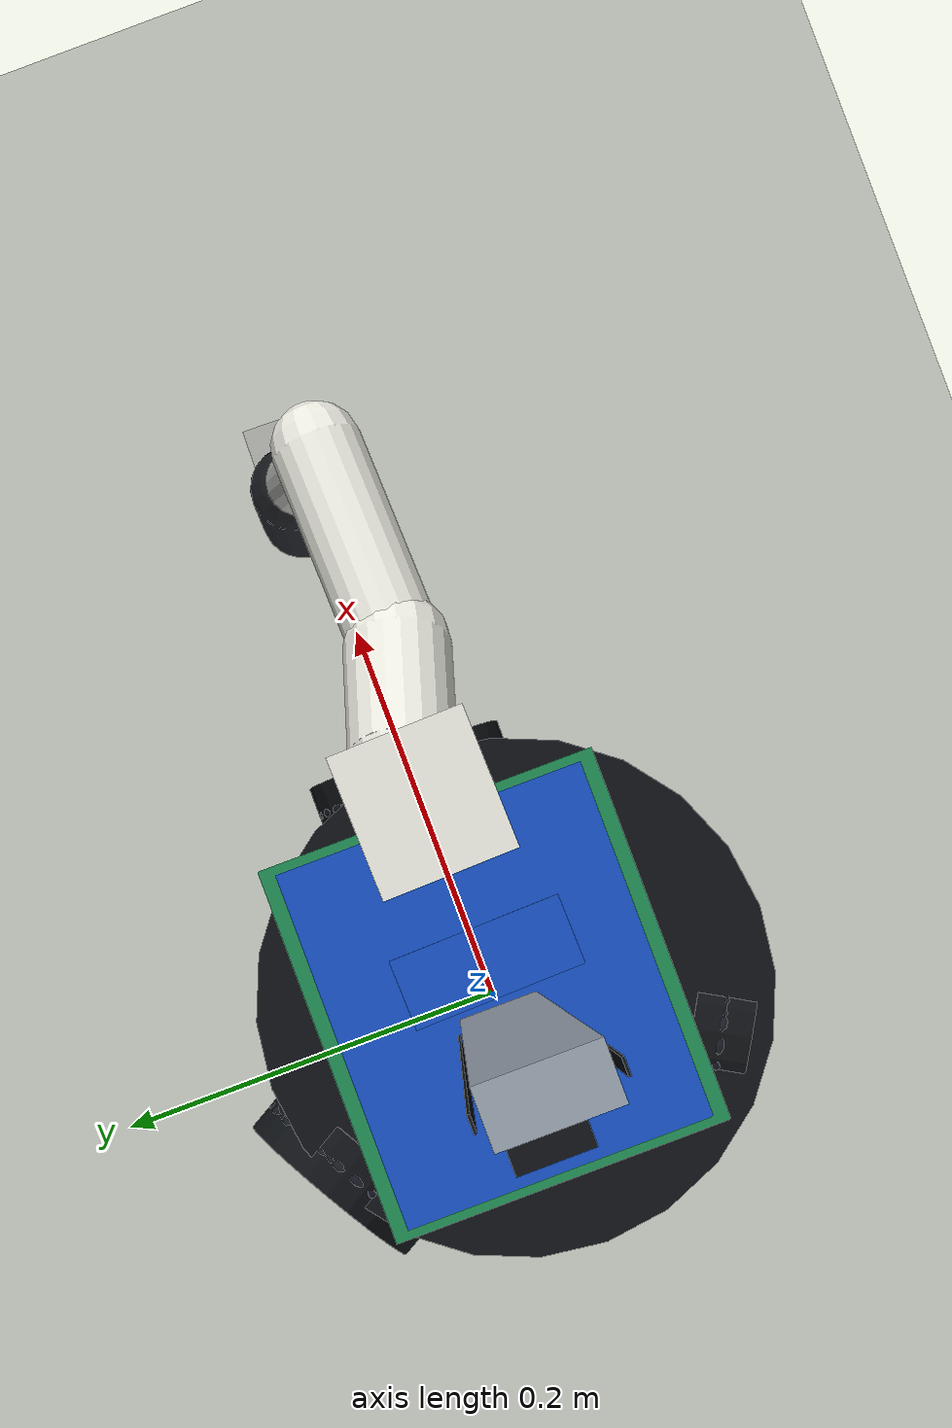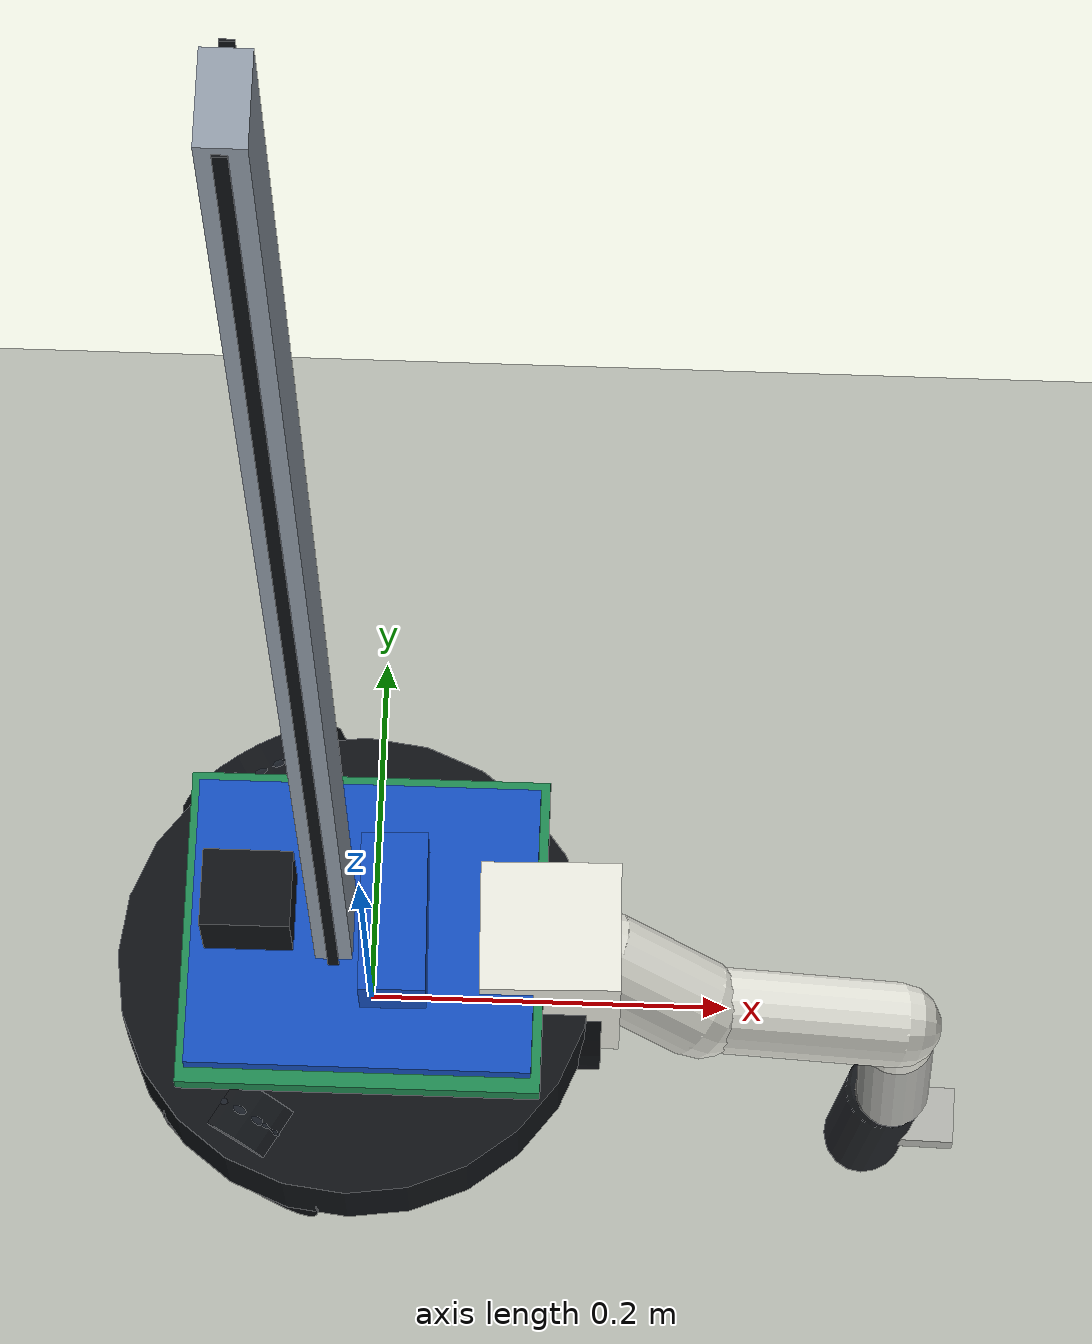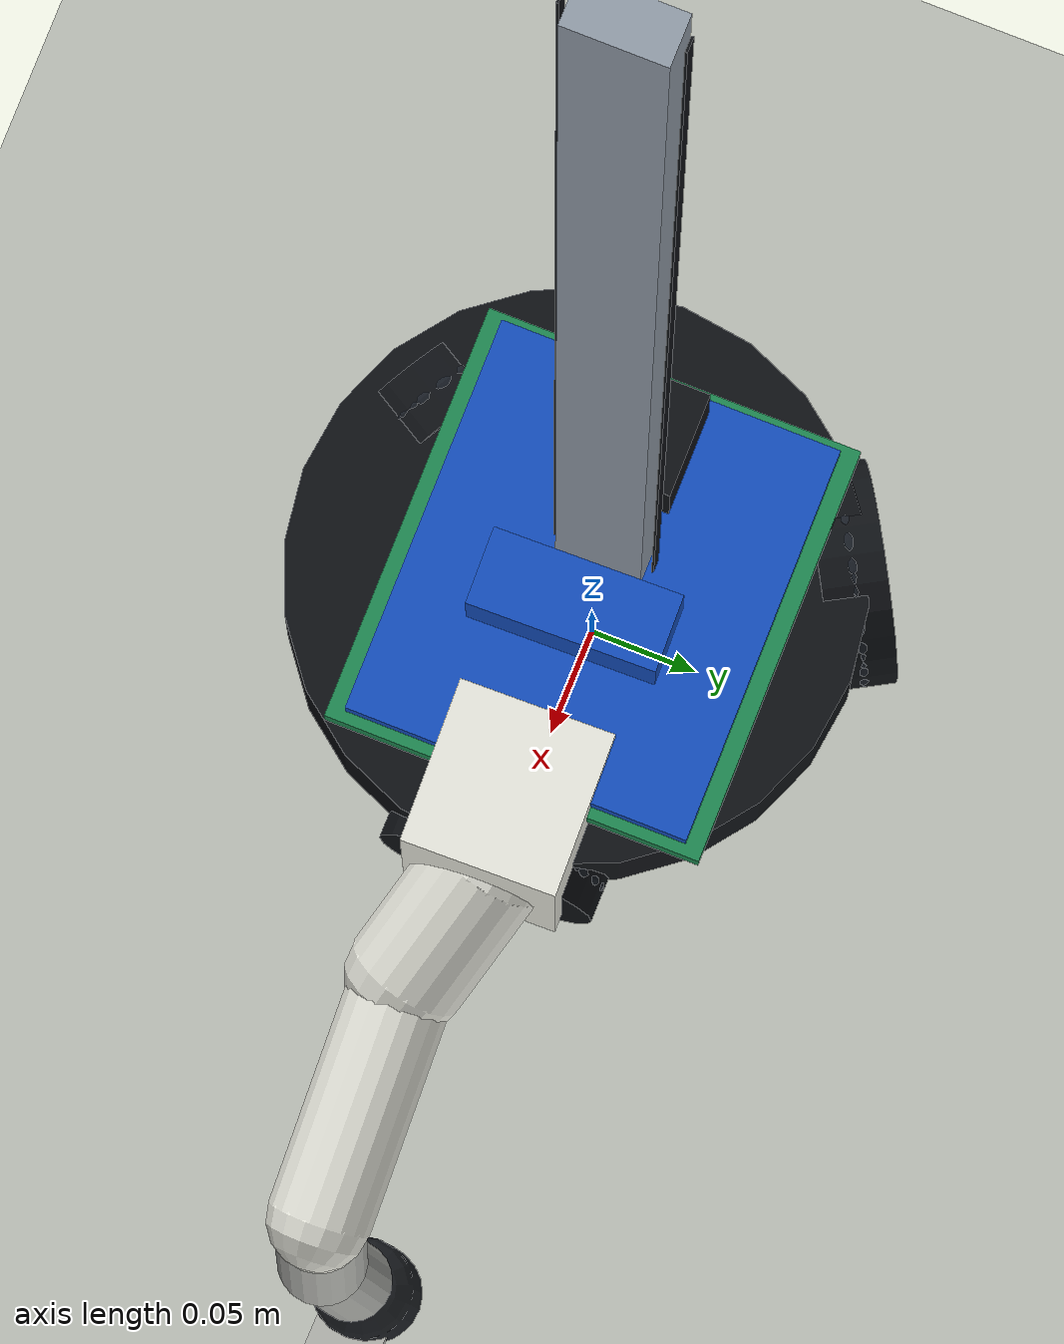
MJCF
<mujoco model="kural workshop">
  <compiler angle="radian" autolimits="true" />
  <option timestep="0.002" gravity="0 0 -9.81" integrator="implicitfast" cone="elliptic" iterations="50" />
  <size nconmax="300" njmax="1200" />
  <visual>
    <global azimuth="135" elevation="-22" />
    <headlight ambient="0.35 0.35 0.4" diffuse="0.7 0.7 0.7" specular="0.15 0.15 0.15" />
  </visual>
  <default>
    <joint damping="0.12" armature="0.003" />
    <geom friction="0.9 0.01 0.002" solref="0.008 1" solimp="0.9 0.95 0.001" />
    <default class="visual">
      <geom contype="0" conaffinity="0" group="1" />
    </default>
    <default class="collision">
      <geom rgba="0.15 0.65 0.9 0.16" group="3" margin="0.001" />
    </default>
    <default class="roller">
      <joint type="hinge" damping="0.0005" armature="0.00002" />
      <geom type="ellipsoid" size="0.005800 0.012000 0.005800" density="650" friction="1.15 0.001 0.0001" contype="2" conaffinity="1" rgba="0.09 0.11 0.14 1" group="2" condim="3" priority="1" />
    </default>
    <default class="arm">
      <joint type="hinge" damping="0.3" armature="0.01" limited="true" />
    </default>
  </default>
  <asset>
    <texture name="floor_tex" type="2d" builtin="checker" rgb1="0.18 0.19 0.2" rgb2="0.25 0.26 0.28" width="512" height="512" />
    <material name="floor_mat" texture="floor_tex" texrepeat="20 20" reflectance="0.08" />
    <material name="dark" rgba="0.055 0.065 0.08 1" />
    <material name="aluminum" rgba="0.58 0.62 0.67 1" specular="0.3" shininess="0.45" />
    <material name="blue" rgba="0.08 0.31 0.75 1" />
    <material name="green" rgba="0.12 0.54 0.32 1" />
    <material name="arm_mat" rgba="0.92 0.92 0.88 1" />
  </asset>
  <worldbody>
    <light name="key" pos="1.5 -1.2 2.6" dir="-0.4 0.3 -1" diffuse="0.9 0.88 0.82" castshadow="true" />
    <light name="fill" pos="-1.5 1 1.8" dir="0.6 -0.4 -1" diffuse="0.35 0.42 0.52" />
    <geom name="floor" type="plane" size="3 3 0.05" material="floor_mat" condim="4" />
    <site name="world_origin" type="sphere" size="0.012" rgba="1 0.35 0.1 1" group="4" />
    <body name="chassis" pos="0 0 0.0508" quat="1 0 0 0">
      <freejoint name="base_free" />
      <inertial pos="0 0 0.13" mass="11" diaginertia="0.18 0.18 0.12" />
      <geom name="base_collision" class="collision" type="cylinder" pos="-0.005 -0.01 0.015" size="0.135 0.035" mass="2.5" contype="2" conaffinity="1" />
      <geom name="base_frame_visual" class="visual" type="cylinder" pos="-0.005 -0.01 0.022" size="0.13 0.025" material="dark" />
      <geom name="green_plate_visual" class="visual" type="box" pos="0 0 0.066" size="0.098 0.088 0.006" material="green" />
      <geom name="blue_plate_visual" class="visual" type="box" pos="0 0 0.078" size="0.093 0.08 0.005" material="blue" />
      <site name="base_heading" type="box" pos="0.09 0 0.11" size="0.09 0.009 0.009" rgba="1 0.34 0.08 1" group="4" />
      <body name="wheel_1_body" pos="-0.057199460 0.099793390 0" quat="0.707106781 -0.613772432 -0.351117362 0.000000000">
        <joint name="wheel_1" type="hinge" axis="0 0 1" damping="0.025" armature="0.004" />
        <geom class="visual" type="cylinder" size="0.0508 0.015" material="dark" />
        <body name="wheel_1_roller_00" pos="0.045000000 0.000000000 0" euler="0 0 0.000000000">
          <joint class="roller" axis="0 1 0" />
          <geom class="roller" />
        </body>
        <body name="wheel_1_roller_01" pos="0.044135338 0.008779064 0" euler="0 0 0.196349541">
          <joint class="roller" axis="0 1 0" />
          <geom class="roller" />
        </body>
        <body name="wheel_1_roller_02" pos="0.041574579 0.017220754 0" euler="0 0 0.392699082">
          <joint class="roller" axis="0 1 0" />
          <geom class="roller" />
        </body>
        <body name="wheel_1_roller_03" pos="0.037416133 0.025000660 0" euler="0 0 0.589048623">
          <joint class="roller" axis="0 1 0" />
          <geom class="roller" />
        </body>
        <body name="wheel_1_roller_04" pos="0.031819805 0.031819805 0" euler="0 0 0.785398163">
          <joint class="roller" axis="0 1 0" />
          <geom class="roller" />
        </body>
        <body name="wheel_1_roller_05" pos="0.025000660 0.037416133 0" euler="0 0 0.981747704">
          <joint class="roller" axis="0 1 0" />
          <geom class="roller" />
        </body>
        <body name="wheel_1_roller_06" pos="0.017220754 0.041574579 0" euler="0 0 1.178097245">
          <joint class="roller" axis="0 1 0" />
          <geom class="roller" />
        </body>
        <body name="wheel_1_roller_07" pos="0.008779064 0.044135338 0" euler="0 0 1.374446786">
          <joint class="roller" axis="0 1 0" />
          <geom class="roller" />
        </body>
        <body name="wheel_1_roller_08" pos="0.000000000 0.045000000 0" euler="0 0 1.570796327">
          <joint class="roller" axis="0 1 0" />
          <geom class="roller" />
        </body>
        <body name="wheel_1_roller_09" pos="-0.008779064 0.044135338 0" euler="0 0 1.767145868">
          <joint class="roller" axis="0 1 0" />
          <geom class="roller" />
        </body>
        <body name="wheel_1_roller_10" pos="-0.017220754 0.041574579 0" euler="0 0 1.963495408">
          <joint class="roller" axis="0 1 0" />
          <geom class="roller" />
        </body>
        <body name="wheel_1_roller_11" pos="-0.025000660 0.037416133 0" euler="0 0 2.159844949">
          <joint class="roller" axis="0 1 0" />
          <geom class="roller" />
        </body>
        <body name="wheel_1_roller_12" pos="-0.031819805 0.031819805 0" euler="0 0 2.356194490">
          <joint class="roller" axis="0 1 0" />
          <geom class="roller" />
        </body>
        <body name="wheel_1_roller_13" pos="-0.037416133 0.025000660 0" euler="0 0 2.552544031">
          <joint class="roller" axis="0 1 0" />
          <geom class="roller" />
        </body>
        <body name="wheel_1_roller_14" pos="-0.041574579 0.017220754 0" euler="0 0 2.748893572">
          <joint class="roller" axis="0 1 0" />
          <geom class="roller" />
        </body>
        <body name="wheel_1_roller_15" pos="-0.044135338 0.008779064 0" euler="0 0 2.945243113">
          <joint class="roller" axis="0 1 0" />
          <geom class="roller" />
        </body>
        <body name="wheel_1_roller_16" pos="-0.045000000 0.000000000 0" euler="0 0 3.141592654">
          <joint class="roller" axis="0 1 0" />
          <geom class="roller" />
        </body>
        <body name="wheel_1_roller_17" pos="-0.044135338 -0.008779064 0" euler="0 0 3.337942194">
          <joint class="roller" axis="0 1 0" />
          <geom class="roller" />
        </body>
        <body name="wheel_1_roller_18" pos="-0.041574579 -0.017220754 0" euler="0 0 3.534291735">
          <joint class="roller" axis="0 1 0" />
          <geom class="roller" />
        </body>
        <body name="wheel_1_roller_19" pos="-0.037416133 -0.025000660 0" euler="0 0 3.730641276">
          <joint class="roller" axis="0 1 0" />
          <geom class="roller" />
        </body>
        <body name="wheel_1_roller_20" pos="-0.031819805 -0.031819805 0" euler="0 0 3.926990817">
          <joint class="roller" axis="0 1 0" />
          <geom class="roller" />
        </body>
        <body name="wheel_1_roller_21" pos="-0.025000660 -0.037416133 0" euler="0 0 4.123340358">
          <joint class="roller" axis="0 1 0" />
          <geom class="roller" />
        </body>
        <body name="wheel_1_roller_22" pos="-0.017220754 -0.041574579 0" euler="0 0 4.319689899">
          <joint class="roller" axis="0 1 0" />
          <geom class="roller" />
        </body>
        <body name="wheel_1_roller_23" pos="-0.008779064 -0.044135338 0" euler="0 0 4.516039440">
          <joint class="roller" axis="0 1 0" />
          <geom class="roller" />
        </body>
        <body name="wheel_1_roller_24" pos="-0.000000000 -0.045000000 0" euler="0 0 4.712388980">
          <joint class="roller" axis="0 1 0" />
          <geom class="roller" />
        </body>
        <body name="wheel_1_roller_25" pos="0.008779064 -0.044135338 0" euler="0 0 4.908738521">
          <joint class="roller" axis="0 1 0" />
          <geom class="roller" />
        </body>
        <body name="wheel_1_roller_26" pos="0.017220754 -0.041574579 0" euler="0 0 5.105088062">
          <joint class="roller" axis="0 1 0" />
          <geom class="roller" />
        </body>
        <body name="wheel_1_roller_27" pos="0.025000660 -0.037416133 0" euler="0 0 5.301437603">
          <joint class="roller" axis="0 1 0" />
          <geom class="roller" />
        </body>
        <body name="wheel_1_roller_28" pos="0.031819805 -0.031819805 0" euler="0 0 5.497787144">
          <joint class="roller" axis="0 1 0" />
          <geom class="roller" />
        </body>
        <body name="wheel_1_roller_29" pos="0.037416133 -0.025000660 0" euler="0 0 5.694136685">
          <joint class="roller" axis="0 1 0" />
          <geom class="roller" />
        </body>
        <body name="wheel_1_roller_30" pos="0.041574579 -0.017220754 0" euler="0 0 5.890486225">
          <joint class="roller" axis="0 1 0" />
          <geom class="roller" />
        </body>
        <body name="wheel_1_roller_31" pos="0.044135338 -0.008779064 0" euler="0 0 6.086835766">
          <joint class="roller" axis="0 1 0" />
          <geom class="roller" />
        </body>
      </body>
      <body name="wheel_2_body" pos="0.114857629 0.000000000 0" quat="0.707106781 0.002809755 0.707101199 0.000000000">
        <joint name="wheel_2" type="hinge" axis="0 0 1" damping="0.025" armature="0.004" />
        <geom class="visual" type="cylinder" size="0.0508 0.015" material="dark" />
        <body name="wheel_2_roller_00" pos="0.045000000 0.000000000 0" euler="0 0 0.000000000">
          <joint class="roller" axis="0 1 0" />
          <geom class="roller" />
        </body>
        <body name="wheel_2_roller_01" pos="0.044135338 0.008779064 0" euler="0 0 0.196349541">
          <joint class="roller" axis="0 1 0" />
          <geom class="roller" />
        </body>
        <body name="wheel_2_roller_02" pos="0.041574579 0.017220754 0" euler="0 0 0.392699082">
          <joint class="roller" axis="0 1 0" />
          <geom class="roller" />
        </body>
        <body name="wheel_2_roller_03" pos="0.037416133 0.025000660 0" euler="0 0 0.589048623">
          <joint class="roller" axis="0 1 0" />
          <geom class="roller" />
        </body>
        <body name="wheel_2_roller_04" pos="0.031819805 0.031819805 0" euler="0 0 0.785398163">
          <joint class="roller" axis="0 1 0" />
          <geom class="roller" />
        </body>
        <body name="wheel_2_roller_05" pos="0.025000660 0.037416133 0" euler="0 0 0.981747704">
          <joint class="roller" axis="0 1 0" />
          <geom class="roller" />
        </body>
        <body name="wheel_2_roller_06" pos="0.017220754 0.041574579 0" euler="0 0 1.178097245">
          <joint class="roller" axis="0 1 0" />
          <geom class="roller" />
        </body>
        <body name="wheel_2_roller_07" pos="0.008779064 0.044135338 0" euler="0 0 1.374446786">
          <joint class="roller" axis="0 1 0" />
          <geom class="roller" />
        </body>
        <body name="wheel_2_roller_08" pos="0.000000000 0.045000000 0" euler="0 0 1.570796327">
          <joint class="roller" axis="0 1 0" />
          <geom class="roller" />
        </body>
        <body name="wheel_2_roller_09" pos="-0.008779064 0.044135338 0" euler="0 0 1.767145868">
          <joint class="roller" axis="0 1 0" />
          <geom class="roller" />
        </body>
        <body name="wheel_2_roller_10" pos="-0.017220754 0.041574579 0" euler="0 0 1.963495408">
          <joint class="roller" axis="0 1 0" />
          <geom class="roller" />
        </body>
        <body name="wheel_2_roller_11" pos="-0.025000660 0.037416133 0" euler="0 0 2.159844949">
          <joint class="roller" axis="0 1 0" />
          <geom class="roller" />
        </body>
        <body name="wheel_2_roller_12" pos="-0.031819805 0.031819805 0" euler="0 0 2.356194490">
          <joint class="roller" axis="0 1 0" />
          <geom class="roller" />
        </body>
        <body name="wheel_2_roller_13" pos="-0.037416133 0.025000660 0" euler="0 0 2.552544031">
          <joint class="roller" axis="0 1 0" />
          <geom class="roller" />
        </body>
        <body name="wheel_2_roller_14" pos="-0.041574579 0.017220754 0" euler="0 0 2.748893572">
          <joint class="roller" axis="0 1 0" />
          <geom class="roller" />
        </body>
        <body name="wheel_2_roller_15" pos="-0.044135338 0.008779064 0" euler="0 0 2.945243113">
          <joint class="roller" axis="0 1 0" />
          <geom class="roller" />
        </body>
        <body name="wheel_2_roller_16" pos="-0.045000000 0.000000000 0" euler="0 0 3.141592654">
          <joint class="roller" axis="0 1 0" />
          <geom class="roller" />
        </body>
        <body name="wheel_2_roller_17" pos="-0.044135338 -0.008779064 0" euler="0 0 3.337942194">
          <joint class="roller" axis="0 1 0" />
          <geom class="roller" />
        </body>
        <body name="wheel_2_roller_18" pos="-0.041574579 -0.017220754 0" euler="0 0 3.534291735">
          <joint class="roller" axis="0 1 0" />
          <geom class="roller" />
        </body>
        <body name="wheel_2_roller_19" pos="-0.037416133 -0.025000660 0" euler="0 0 3.730641276">
          <joint class="roller" axis="0 1 0" />
          <geom class="roller" />
        </body>
        <body name="wheel_2_roller_20" pos="-0.031819805 -0.031819805 0" euler="0 0 3.926990817">
          <joint class="roller" axis="0 1 0" />
          <geom class="roller" />
        </body>
        <body name="wheel_2_roller_21" pos="-0.025000660 -0.037416133 0" euler="0 0 4.123340358">
          <joint class="roller" axis="0 1 0" />
          <geom class="roller" />
        </body>
        <body name="wheel_2_roller_22" pos="-0.017220754 -0.041574579 0" euler="0 0 4.319689899">
          <joint class="roller" axis="0 1 0" />
          <geom class="roller" />
        </body>
        <body name="wheel_2_roller_23" pos="-0.008779064 -0.044135338 0" euler="0 0 4.516039440">
          <joint class="roller" axis="0 1 0" />
          <geom class="roller" />
        </body>
        <body name="wheel_2_roller_24" pos="-0.000000000 -0.045000000 0" euler="0 0 4.712388980">
          <joint class="roller" axis="0 1 0" />
          <geom class="roller" />
        </body>
        <body name="wheel_2_roller_25" pos="0.008779064 -0.044135338 0" euler="0 0 4.908738521">
          <joint class="roller" axis="0 1 0" />
          <geom class="roller" />
        </body>
        <body name="wheel_2_roller_26" pos="0.017220754 -0.041574579 0" euler="0 0 5.105088062">
          <joint class="roller" axis="0 1 0" />
          <geom class="roller" />
        </body>
        <body name="wheel_2_roller_27" pos="0.025000660 -0.037416133 0" euler="0 0 5.301437603">
          <joint class="roller" axis="0 1 0" />
          <geom class="roller" />
        </body>
        <body name="wheel_2_roller_28" pos="0.031819805 -0.031819805 0" euler="0 0 5.497787144">
          <joint class="roller" axis="0 1 0" />
          <geom class="roller" />
        </body>
        <body name="wheel_2_roller_29" pos="0.037416133 -0.025000660 0" euler="0 0 5.694136685">
          <joint class="roller" axis="0 1 0" />
          <geom class="roller" />
        </body>
        <body name="wheel_2_roller_30" pos="0.041574579 -0.017220754 0" euler="0 0 5.890486225">
          <joint class="roller" axis="0 1 0" />
          <geom class="roller" />
        </body>
        <body name="wheel_2_roller_31" pos="0.044135338 -0.008779064 0" euler="0 0 6.086835766">
          <joint class="roller" axis="0 1 0" />
          <geom class="roller" />
        </body>
      </body>
      <body name="wheel_3_body" pos="-0.057658169 -0.099793390 0" quat="0.707106781 0.610962774 -0.355983833 0.000000000">
        <joint name="wheel_3" type="hinge" axis="0 0 1" damping="0.025" armature="0.004" />
        <geom class="visual" type="cylinder" size="0.0508 0.015" material="dark" />
        <body name="wheel_3_roller_00" pos="0.045000000 0.000000000 0" euler="0 0 0.000000000">
          <joint class="roller" axis="0 1 0" />
          <geom class="roller" />
        </body>
        <body name="wheel_3_roller_01" pos="0.044135338 0.008779064 0" euler="0 0 0.196349541">
          <joint class="roller" axis="0 1 0" />
          <geom class="roller" />
        </body>
        <body name="wheel_3_roller_02" pos="0.041574579 0.017220754 0" euler="0 0 0.392699082">
          <joint class="roller" axis="0 1 0" />
          <geom class="roller" />
        </body>
        <body name="wheel_3_roller_03" pos="0.037416133 0.025000660 0" euler="0 0 0.589048623">
          <joint class="roller" axis="0 1 0" />
          <geom class="roller" />
        </body>
        <body name="wheel_3_roller_04" pos="0.031819805 0.031819805 0" euler="0 0 0.785398163">
          <joint class="roller" axis="0 1 0" />
          <geom class="roller" />
        </body>
        <body name="wheel_3_roller_05" pos="0.025000660 0.037416133 0" euler="0 0 0.981747704">
          <joint class="roller" axis="0 1 0" />
          <geom class="roller" />
        </body>
        <body name="wheel_3_roller_06" pos="0.017220754 0.041574579 0" euler="0 0 1.178097245">
          <joint class="roller" axis="0 1 0" />
          <geom class="roller" />
        </body>
        <body name="wheel_3_roller_07" pos="0.008779064 0.044135338 0" euler="0 0 1.374446786">
          <joint class="roller" axis="0 1 0" />
          <geom class="roller" />
        </body>
        <body name="wheel_3_roller_08" pos="0.000000000 0.045000000 0" euler="0 0 1.570796327">
          <joint class="roller" axis="0 1 0" />
          <geom class="roller" />
        </body>
        <body name="wheel_3_roller_09" pos="-0.008779064 0.044135338 0" euler="0 0 1.767145868">
          <joint class="roller" axis="0 1 0" />
          <geom class="roller" />
        </body>
        <body name="wheel_3_roller_10" pos="-0.017220754 0.041574579 0" euler="0 0 1.963495408">
          <joint class="roller" axis="0 1 0" />
          <geom class="roller" />
        </body>
        <body name="wheel_3_roller_11" pos="-0.025000660 0.037416133 0" euler="0 0 2.159844949">
          <joint class="roller" axis="0 1 0" />
          <geom class="roller" />
        </body>
        <body name="wheel_3_roller_12" pos="-0.031819805 0.031819805 0" euler="0 0 2.356194490">
          <joint class="roller" axis="0 1 0" />
          <geom class="roller" />
        </body>
        <body name="wheel_3_roller_13" pos="-0.037416133 0.025000660 0" euler="0 0 2.552544031">
          <joint class="roller" axis="0 1 0" />
          <geom class="roller" />
        </body>
        <body name="wheel_3_roller_14" pos="-0.041574579 0.017220754 0" euler="0 0 2.748893572">
          <joint class="roller" axis="0 1 0" />
          <geom class="roller" />
        </body>
        <body name="wheel_3_roller_15" pos="-0.044135338 0.008779064 0" euler="0 0 2.945243113">
          <joint class="roller" axis="0 1 0" />
          <geom class="roller" />
        </body>
        <body name="wheel_3_roller_16" pos="-0.045000000 0.000000000 0" euler="0 0 3.141592654">
          <joint class="roller" axis="0 1 0" />
          <geom class="roller" />
        </body>
        <body name="wheel_3_roller_17" pos="-0.044135338 -0.008779064 0" euler="0 0 3.337942194">
          <joint class="roller" axis="0 1 0" />
          <geom class="roller" />
        </body>
        <body name="wheel_3_roller_18" pos="-0.041574579 -0.017220754 0" euler="0 0 3.534291735">
          <joint class="roller" axis="0 1 0" />
          <geom class="roller" />
        </body>
        <body name="wheel_3_roller_19" pos="-0.037416133 -0.025000660 0" euler="0 0 3.730641276">
          <joint class="roller" axis="0 1 0" />
          <geom class="roller" />
        </body>
        <body name="wheel_3_roller_20" pos="-0.031819805 -0.031819805 0" euler="0 0 3.926990817">
          <joint class="roller" axis="0 1 0" />
          <geom class="roller" />
        </body>
        <body name="wheel_3_roller_21" pos="-0.025000660 -0.037416133 0" euler="0 0 4.123340358">
          <joint class="roller" axis="0 1 0" />
          <geom class="roller" />
        </body>
        <body name="wheel_3_roller_22" pos="-0.017220754 -0.041574579 0" euler="0 0 4.319689899">
          <joint class="roller" axis="0 1 0" />
          <geom class="roller" />
        </body>
        <body name="wheel_3_roller_23" pos="-0.008779064 -0.044135338 0" euler="0 0 4.516039440">
          <joint class="roller" axis="0 1 0" />
          <geom class="roller" />
        </body>
        <body name="wheel_3_roller_24" pos="-0.000000000 -0.045000000 0" euler="0 0 4.712388980">
          <joint class="roller" axis="0 1 0" />
          <geom class="roller" />
        </body>
        <body name="wheel_3_roller_25" pos="0.008779064 -0.044135338 0" euler="0 0 4.908738521">
          <joint class="roller" axis="0 1 0" />
          <geom class="roller" />
        </body>
        <body name="wheel_3_roller_26" pos="0.017220754 -0.041574579 0" euler="0 0 5.105088062">
          <joint class="roller" axis="0 1 0" />
          <geom class="roller" />
        </body>
        <body name="wheel_3_roller_27" pos="0.025000660 -0.037416133 0" euler="0 0 5.301437603">
          <joint class="roller" axis="0 1 0" />
          <geom class="roller" />
        </body>
        <body name="wheel_3_roller_28" pos="0.031819805 -0.031819805 0" euler="0 0 5.497787144">
          <joint class="roller" axis="0 1 0" />
          <geom class="roller" />
        </body>
        <body name="wheel_3_roller_29" pos="0.037416133 -0.025000660 0" euler="0 0 5.694136685">
          <joint class="roller" axis="0 1 0" />
          <geom class="roller" />
        </body>
        <body name="wheel_3_roller_30" pos="0.041574579 -0.017220754 0" euler="0 0 5.890486225">
          <joint class="roller" axis="0 1 0" />
          <geom class="roller" />
        </body>
        <body name="wheel_3_roller_31" pos="0.044135338 -0.008779064 0" euler="0 0 6.086835766">
          <joint class="roller" axis="0 1 0" />
          <geom class="roller" />
        </body>
      </body>
      <geom name="rail_visual" class="visual" type="box" pos="-0.015 0 0.545" size="0.01 0.02 0.5" material="aluminum" />
      <geom name="belt_front_visual" class="visual" type="box" pos="-0.015 -0.023 0.545" size="0.003 0.0005 0.5" material="dark" />
      <geom name="belt_rear_visual" class="visual" type="box" pos="-0.015 0.023 0.545" size="0.003 0.0005 0.5" material="dark" />
      <geom name="lift_motor_visual" class="visual" type="box" pos="-0.06 0 0.12" size="0.024 0.021 0.021" material="dark" />
      <body name="lift_carriage" pos="0.0170084393342 -0.00226620003327 0.0724123202603" gravcomp="1" quat="-3.05700323475e-08 0.715246075115 -0.698872700878 -3.11959561574e-08">
        <joint name="lift" type="slide" axis="-8.73546925474e-08 -1.26187032935e-10 -1" range="0 0.86" damping="55" armature="0.25" />
        <inertial pos="0.08 0 0.04" mass="3.2" diaginertia="0.045 0.05 0.025" />
        <geom name="carriage_collision" class="collision" type="box" size="0.048 0.022 0.048" mass="0.65" />
        <geom name="carriage_visual" class="visual" type="box" size="0.044 0.018 0.044" material="blue" />
        <body name="arm_mount" pos="5.74721784052e-10 -0.0490000001899 6.18316509104e-12" gravcomp="1" quat="0.500000004456 0.499999995572 -0.499999982355 0.500000017617">
          <geom class="collision" type="box" pos="0.035 0 0.035" size="0.055 0.038 0.04" mass="0.55" />
          <geom class="visual" type="box" pos="0.035 0 0.035" size="0.055 0.036 0.038" material="arm_mat" />
          <body name="shoulder_pan_link" pos="0.0388352842531 -1.32520451071e-08 0.0623999941506" quat="1.079010418e-10 -1.26782297197e-06 0.999999999998 1.26647307834e-06" gravcomp="1">
            <joint name="shoulder_pan" class="arm" axis="0 0 1" range="-1.91986 1.91986" />
            <geom class="collision" type="capsule" fromto="0 0 0 -0.030399 -0.018278 -0.0542" size="0.029" mass="0.42" />
            <geom class="visual" type="capsule" fromto="0 0 0 -0.030399 -0.018278 -0.0542" size="0.028" material="arm_mat" />
            <body name="shoulder_lift_link" pos="-0.030399212684 -0.0182778020721 -0.0541999878844" quat="-0.499998190075 0.4999999999 0.500000000095 0.500001809924" gravcomp="1">
              <joint name="shoulder_lift" class="arm" axis="0 0 1" range="-1.74533 1.74533" />
              <geom class="collision" type="capsule" fromto="0 0 0 -0.11257 -0.028 0" size="0.025" mass="0.48" />
              <geom class="visual" type="capsule" fromto="0 0 0 -0.11257 -0.028 0" size="0.024" material="arm_mat" />
              <body name="elbow_link" pos="-0.112570003866 -0.0279999809721 5.65598415325e-10" quat="0.70710550328 -3.86931313208e-09 8.68625185315e-10 0.707108059091" gravcomp="1">
                <joint name="elbow_flex" class="arm" axis="0 0 1" range="-1.69 1.69" />
                <geom class="collision" type="capsule" fromto="0 0 0 -0.1349 0.0052 0" size="0.022" mass="0.4" />
                <geom class="visual" type="capsule" fromto="0 0 0 -0.1349 0.0052 0" size="0.021" material="arm_mat" />
                <body name="wrist_flex_link" pos="-0.134899978405 0.00519999459248 -5.35576391569e-09" quat="-0.707105502105 -1.71559968073e-09 -6.65014985738e-10 0.707108060266" gravcomp="1">
                  <joint name="wrist_flex" class="arm" axis="0 0 1" range="-1.65806 1.65806" />
                  <geom class="collision" type="capsule" fromto="0 0 0 0 -0.0611 0.0181" size="0.02" mass="0.24" />
                  <geom class="visual" type="capsule" fromto="0 0 0 0 -0.0611 0.0181" size="0.019" material="arm_mat" />
                  <body name="wrist_roll_link" pos="3.39228789503e-09 -0.0610999825739 0.0180999844093" quat="0.0172100359931 -0.0172081650268 0.70689864743 0.706896029116" gravcomp="1">
                    <joint name="wrist_roll" class="arm" axis="0 0 1" range="-2.74385 2.84121" />
                    <geom class="collision" type="capsule" fromto="0 0 0 -0.0079 -0.000218 -0.098127" size="0.025" mass="0.2" />
                    <geom class="visual" type="capsule" fromto="0 0 0 -0.0079 -0.000218 -0.098127" size="0.024" material="dark" />
                    <site name="tool_frame" type="sphere" pos="-0.0079 -0.000218 -0.098127" quat="0 0 1 0" size="0.008" rgba="0.95 0.2 0.2 1" group="4" />
                    <body name="gripper_link" pos="0.0201999956344 0.0187999861592 -0.0233999956793" quat="0.707105503817 0.707108058554 -7.63698008587e-09 1.69412666377e-08" gravcomp="1">
                      <joint name="gripper" class="arm" axis="0 0 1" range="-0.174533 1.74533" />
                      <geom class="collision" type="box" pos="0 -0.03 0.019" size="0.025 0.008 0.018" mass="0.07" />
                      <geom class="visual" type="box" pos="0 -0.03 0.019" size="0.024 0.007 0.017" material="arm_mat" />
                    </body>
                    <body name="wrist_camera_optical" pos="0.0025000348687171936 -0.0664154663681984 -0.008004538714885712" quat="0.690345287322998 0.15304677188396454 0.15304672718048096 -0.6903454065322876" />
                  </body>
                </body>
              </body>
            </body>
          </body>
        </body>
        <body name="spine_camera_18in_optical" pos="-1.044831350327513e-07 -0.10310578346252441 -0.42887669801712036" quat="0.21643951535224915 -0.976296067237854 -3.632798950548022e-08 1.2884790123735002e-07" />
      </body>
      <camera name="follow" pos="-1.4 -1.4 0.85" xyaxes="0.707 -0.707 0 0.3 0.3 0.906" mode="trackcom" />
      <camera name="arm_close" pos="-0.65 -0.75 0.75" xyaxes="0.75 -0.66 0 0.35 0.4 0.845" mode="track" />
      <geom name="rail_1_collision" type="box" size="0.01 0.02 0.25" contype="2" conaffinity="1" rgba="0.2 0.7 0.9 0.15" group="3" mass="0" pos="0.0170084393342 -0.00226620003327 0.25241229026" quat="0.69887270056 0 0 0.715246075425" />
      <geom name="rail_2_collision" type="box" size="0.01 0.02 0.25" contype="2" conaffinity="1" rgba="0.2 0.7 0.9 0.15" group="3" mass="0" pos="0.0170084393342 -0.00226620003327 0.75241232026" quat="0.69887270056 0 0 0.715246075425" />
    </body>
    <camera name="top" pos="0 0 3" quat="0.707107 0.707107 0 0" />
    <camera name="workshop" pos="-1.7 -1.9 1.35" xyaxes="0.74 -0.67 0 0.3 0.33 0.895" />
  </worldbody>
  <contact>
    <exclude body1="chassis" body2="wheel_1_body" />
    <exclude body1="chassis" body2="wheel_2_body" />
    <exclude body1="chassis" body2="wheel_3_body" />
    <exclude body1="shoulder_pan_link" body2="shoulder_lift_link" />
    <exclude body1="shoulder_lift_link" body2="elbow_link" />
    <exclude body1="elbow_link" body2="wrist_flex_link" />
    <exclude body1="wrist_flex_link" body2="wrist_roll_link" />
    <exclude body1="wrist_roll_link" body2="gripper_link" />
  </contact>
  <actuator>
    <velocity name="wheel_1_motor" joint="wheel_1" kv="2.5" ctrlrange="-24 24" forcerange="-5 5" />
    <velocity name="wheel_2_motor" joint="wheel_2" kv="2.5" ctrlrange="-24 24" forcerange="-5 5" />
    <velocity name="wheel_3_motor" joint="wheel_3" kv="2.5" ctrlrange="-24 24" forcerange="-5 5" />
    <position name="lift_motor" joint="lift" kp="650" kv="75" ctrlrange="0 0.86" forcerange="-180 180" />
    <position name="shoulder_pan_motor" joint="shoulder_pan" kp="55" kv="4" ctrlrange="-1.91986 1.91986" forcerange="-12 12" />
    <position name="shoulder_lift_motor" joint="shoulder_lift" kp="65" kv="5" ctrlrange="-1.74533 1.74533" forcerange="-15 15" />
    <position name="elbow_flex_motor" joint="elbow_flex" kp="55" kv="4" ctrlrange="-1.69 1.69" forcerange="-12 12" />
    <position name="wrist_flex_motor" joint="wrist_flex" kp="42" kv="3" ctrlrange="-1.65806 1.65806" forcerange="-8 8" />
    <position name="wrist_roll_motor" joint="wrist_roll" kp="35" kv="2.5" ctrlrange="-2.74385 2.84121" forcerange="-6 6" />
    <position name="gripper_motor" joint="gripper" kp="22" kv="1.5" ctrlrange="-0.174533 1.74533" forcerange="-4 4" />
  </actuator>
  <sensor>
    <jointpos name="lift_position" joint="lift" />
    <jointpos name="shoulder_pan_position" joint="shoulder_pan" />
    <jointpos name="shoulder_lift_position" joint="shoulder_lift" />
    <jointpos name="elbow_flex_position" joint="elbow_flex" />
    <jointpos name="wrist_flex_position" joint="wrist_flex" />
    <jointpos name="wrist_roll_position" joint="wrist_roll" />
    <jointpos name="gripper_position" joint="gripper" />
    <framepos name="tool_position" objtype="site" objname="tool_frame" />
    <framequat name="tool_orientation" objtype="site" objname="tool_frame" />
  </sensor>
</mujoco>
